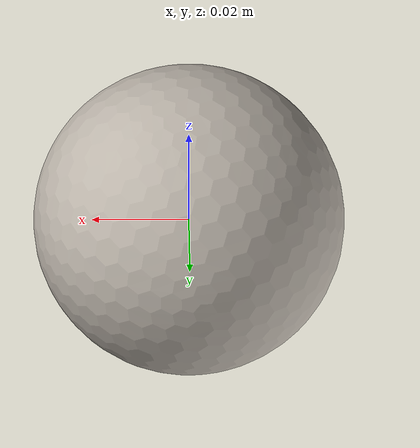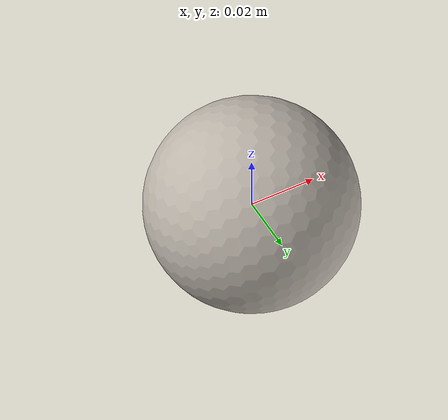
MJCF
<mujoco model="ball_cb364832">
  <compiler angle="radian"/>
  <asset>
    <texture type="2d" name="ball_cb364832_tex" file="ball_cb364832_visual_0.png"/>
    <material name="ball_cb364832_mat" texture="ball_cb364832_tex"/>
    <mesh name="ball_cb364832_visual" content_type="model/obj" file="ball_cb364832_visual.obj" scale="-1.48803 1.48803 1.48803"/>
    <mesh name="ball_cb364832_c0" content_type="model/obj" file="ball_cb364832_c0.obj" scale="-1.48803 1.48803 1.48803"/>
  </asset>
  <worldbody>
    <body name="ball_cb364832">
      <freejoint/>
      <geom name="ball_cb364832_visual" type="mesh" mesh="ball_cb364832_visual" mass="1e-8" contype="0" conaffinity="0" group="2" material="ball_cb364832_mat"/>
      <geom name="ball_cb364832_c0" type="mesh" mesh="ball_cb364832_c0" group="3" density="424.201" friction="0.9 0.05 0.005" condim="4" rgba="0.4 0.5 0.9 0.35"/>
    </body>
  </worldbody>
</mujoco>
